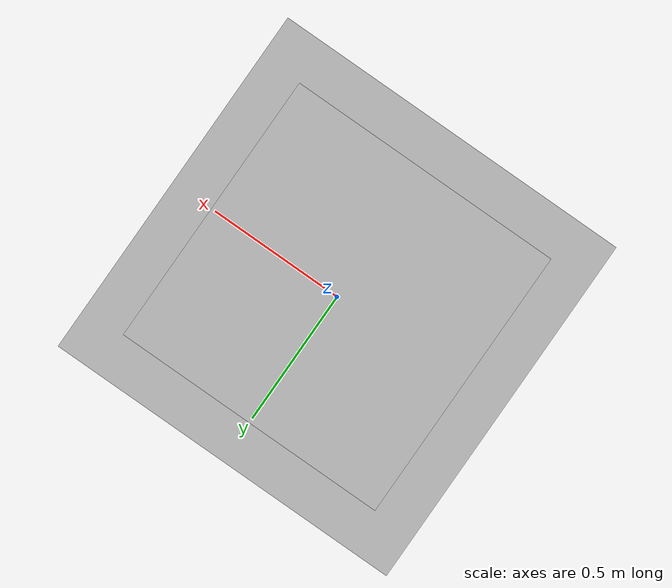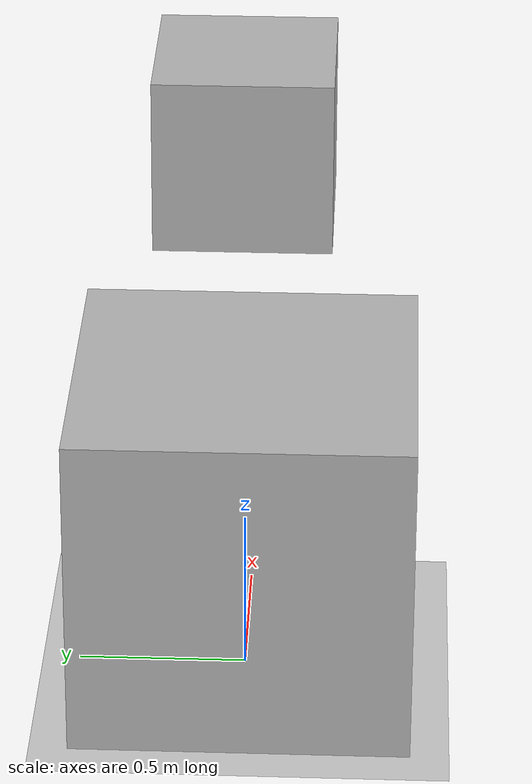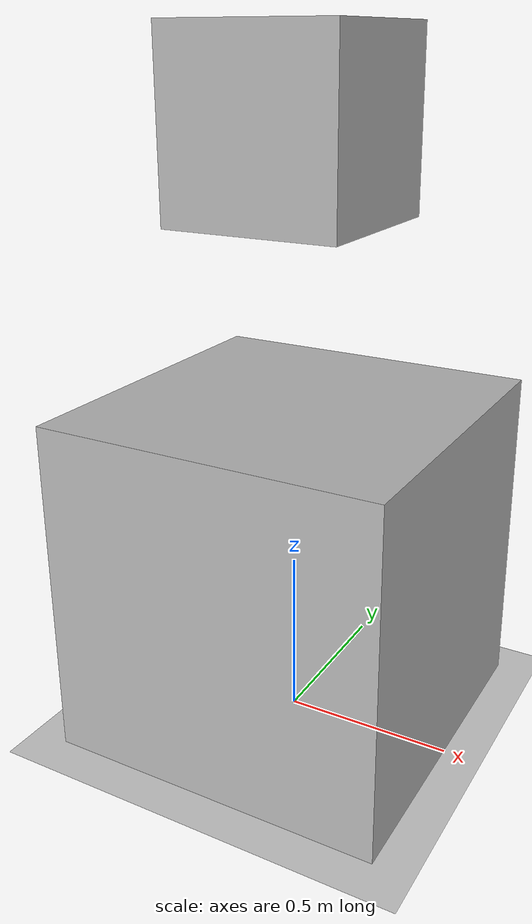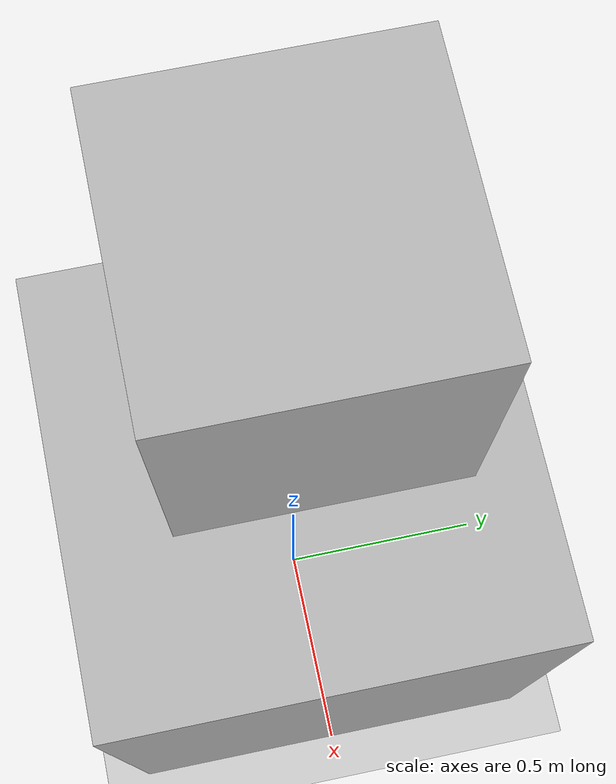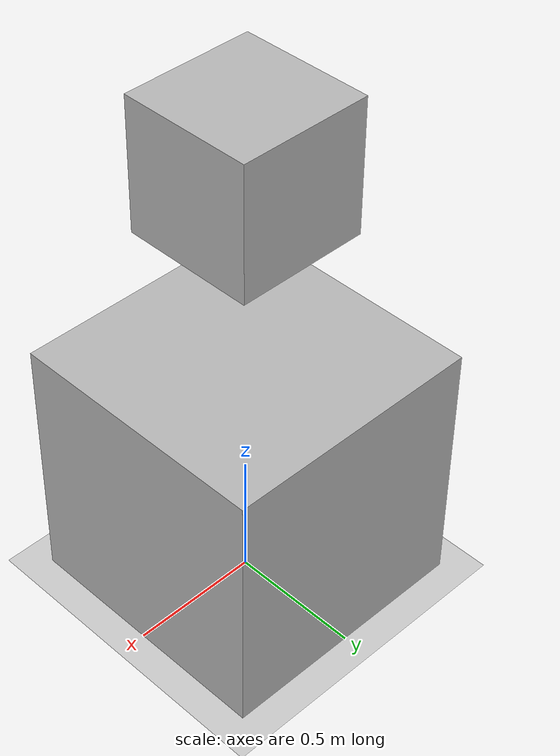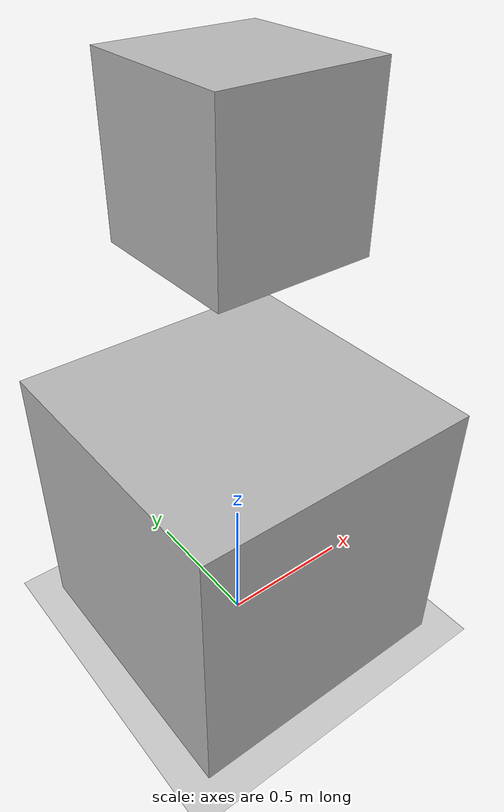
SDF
<?xml version="1.0"?>
<sdf version="1.6">
  <world name="default">
    <plugin name="gazebo_ros_state" filename="libgazebo_ros_state1.so">
      <ros>
        <namespace>/demo</namespace>
        <remapping>model_states:=model_states_demo</remapping>
        <remapping>link_states:=link_states_demo</remapping>
      </ros>

      <update_rate>1.0</update_rate>
    </plugin>

    <include>
      <uri>model://ground_plane</uri>
    </include>
    <include>
      <uri>model://sun</uri>
    </include>

    <model name='boxes'>
      <pose>0 0 0.5 0 0 0</pose>

      <link name='bottom'>
        <visual name='visual'>
          <geometry>
            <box>
              <size>1 1 1</size>
            </box>
          </geometry>
        </visual>
        <collision name='collision'>
          <geometry>
            <box>
              <size>1 1 1</size>
            </box>
          </geometry>
        </collision>
      </link>
      <link name='top'>
        <pose>0 0 1.25 0 0 0</pose>
        <self_collide>true</self_collide>
        <visual name='visual'>
          <geometry>
            <box>
              <size>0.5 0.5 0.5</size>
            </box>
          </geometry>
        </visual>
        <collision name='collision'>
          <geometry>
            <box>
              <size>0.5 0.5 0.5</size>
            </box>
          </geometry>
        </collision>
      </link>

    </model>
  </world>
</sdf>
